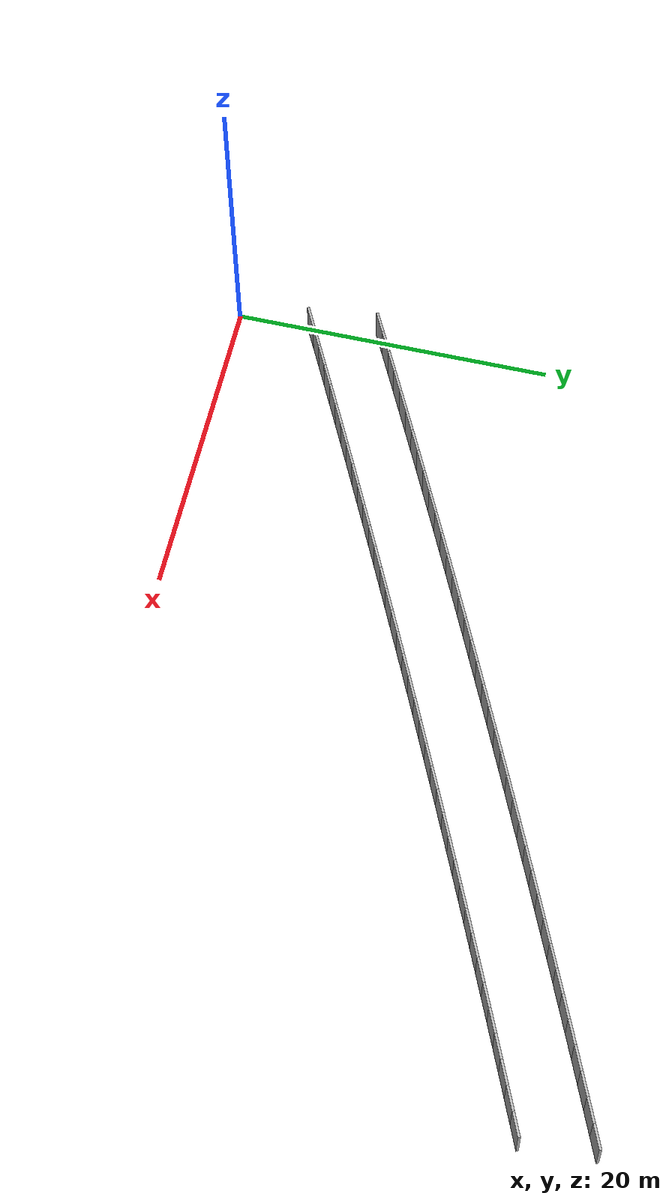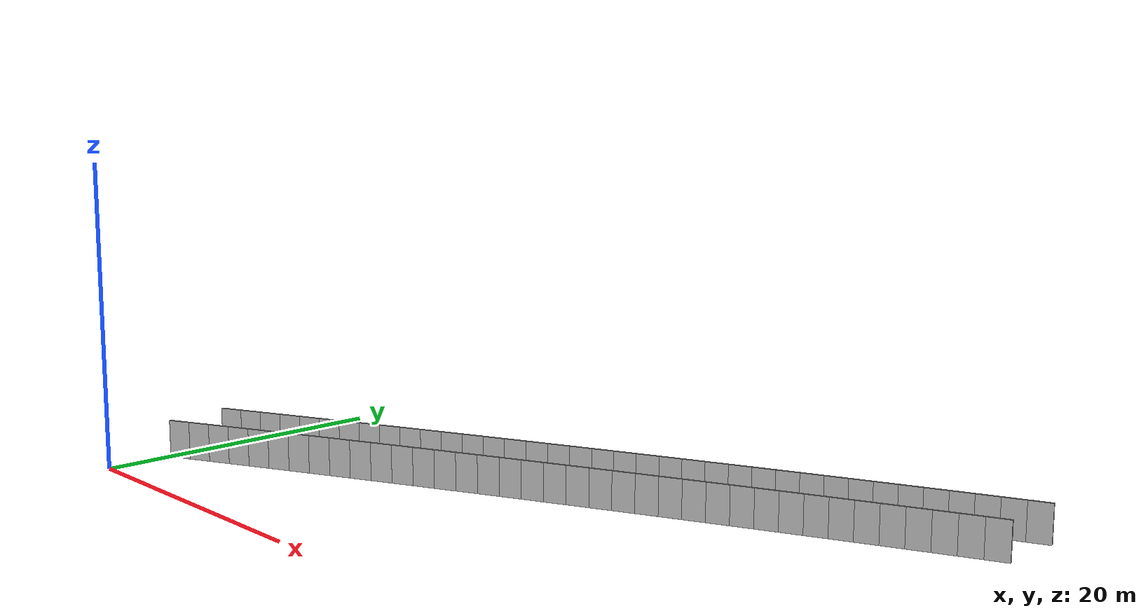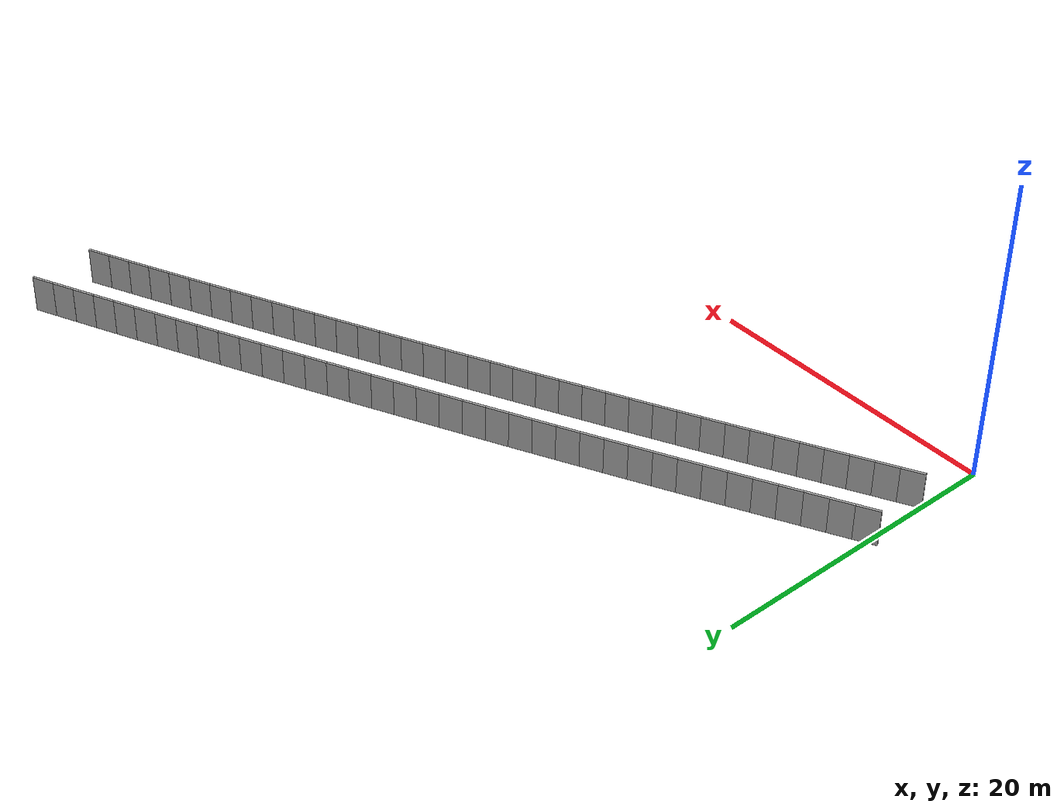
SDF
<?xml version="1.0" ?>
<sdf version="1.6">
  <model name="sps_1545">
    <pose frame="">0 0 0 0 -0 0</pose>
    <static>1</static>
    <self_collide>0</self_collide>
    <allow_auto_disable>0</allow_auto_disable>
    <link name="Wall3127">
      <kinematic>0</kinematic>
      <gravity>1</gravity>
      <self_collide>0</self_collide>
      <collision name="collision">
        <geometry>
          <box>
            <size>1.4966 0.15 2.5</size>
          </box>
        </geometry>
        <pose frame="">0 0 0 0 -0 0</pose>
      </collision>
      <visual name="visual">
        <geometry>
          <box>
            <size>1.4966 0.15 2.5</size>
          </box>
        </geometry>
        <pose frame="">0 0 0 0 -0 0</pose>
        <cast_shadows>1</cast_shadows>
        <transparency>0.0</transparency>
      </visual>
      <pose frame="">49.2956 28.1394 1.25 0 0 -2.72398</pose>
    </link>
    <link name="Wall3128">
      <kinematic>0</kinematic>
      <gravity>1</gravity>
      <self_collide>0</self_collide>
      <collision name="collision">
        <geometry>
          <box>
            <size>1.49636 0.15 2.5</size>
          </box>
        </geometry>
        <pose frame="">0 0 0 0 -0 0</pose>
      </collision>
      <visual name="visual">
        <geometry>
          <box>
            <size>1.49636 0.15 2.5</size>
          </box>
        </geometry>
        <pose frame="">0 0 0 0 -0 0</pose>
        <cast_shadows>1</cast_shadows>
        <transparency>0.0</transparency>
      </visual>
      <pose frame="">47.9282 27.5314 1.25 0 0 -2.72243</pose>
    </link>
    <link name="Wall3129">
      <kinematic>0</kinematic>
      <gravity>1</gravity>
      <self_collide>0</self_collide>
      <collision name="collision">
        <geometry>
          <box>
            <size>1.49648 0.15 2.5</size>
          </box>
        </geometry>
        <pose frame="">0 0 0 0 -0 0</pose>
      </collision>
      <visual name="visual">
        <geometry>
          <box>
            <size>1.49648 0.15 2.5</size>
          </box>
        </geometry>
        <pose frame="">0 0 0 0 -0 0</pose>
        <cast_shadows>1</cast_shadows>
        <transparency>0.0</transparency>
      </visual>
      <pose frame="">46.5619 26.9213 1.25 0 0 -2.72086</pose>
    </link>
    <link name="Wall3130">
      <kinematic>0</kinematic>
      <gravity>1</gravity>
      <self_collide>0</self_collide>
      <collision name="collision">
        <geometry>
          <box>
            <size>1.49656 0.15 2.5</size>
          </box>
        </geometry>
        <pose frame="">0 0 0 0 -0 0</pose>
      </collision>
      <visual name="visual">
        <geometry>
          <box>
            <size>1.49656 0.15 2.5</size>
          </box>
        </geometry>
        <pose frame="">0 0 0 0 -0 0</pose>
        <cast_shadows>1</cast_shadows>
        <transparency>0.0</transparency>
      </visual>
      <pose frame="">45.1964 26.3089 1.25 0 0 -2.71914</pose>
    </link>
    <link name="Wall3131">
      <kinematic>0</kinematic>
      <gravity>1</gravity>
      <self_collide>0</self_collide>
      <collision name="collision">
        <geometry>
          <box>
            <size>1.4965 0.15 2.5</size>
          </box>
        </geometry>
        <pose frame="">0 0 0 0 -0 0</pose>
      </collision>
      <visual name="visual">
        <geometry>
          <box>
            <size>1.4965 0.15 2.5</size>
          </box>
        </geometry>
        <pose frame="">0 0 0 0 -0 0</pose>
        <cast_shadows>1</cast_shadows>
        <transparency>0.0</transparency>
      </visual>
      <pose frame="">43.8319 25.6943 1.25 0 0 -2.71765</pose>
    </link>
    <link name="Wall3132">
      <kinematic>0</kinematic>
      <gravity>1</gravity>
      <self_collide>0</self_collide>
      <collision name="collision">
        <geometry>
          <box>
            <size>1.4966 0.15 2.5</size>
          </box>
        </geometry>
        <pose frame="">0 0 0 0 -0 0</pose>
      </collision>
      <visual name="visual">
        <geometry>
          <box>
            <size>1.4966 0.15 2.5</size>
          </box>
        </geometry>
        <pose frame="">0 0 0 0 -0 0</pose>
        <cast_shadows>1</cast_shadows>
        <transparency>0.0</transparency>
      </visual>
      <pose frame="">42.4683 25.0777 1.25 0 0 -2.7162</pose>
    </link>
    <link name="Wall3133">
      <kinematic>0</kinematic>
      <gravity>1</gravity>
      <self_collide>0</self_collide>
      <collision name="collision">
        <geometry>
          <box>
            <size>1.49647 0.15 2.5</size>
          </box>
        </geometry>
        <pose frame="">0 0 0 0 -0 0</pose>
      </collision>
      <visual name="visual">
        <geometry>
          <box>
            <size>1.49647 0.15 2.5</size>
          </box>
        </geometry>
        <pose frame="">0 0 0 0 -0 0</pose>
        <cast_shadows>1</cast_shadows>
        <transparency>0.0</transparency>
      </visual>
      <pose frame="">41.1056 24.4589 1.25 0 0 -2.71441</pose>
    </link>
    <link name="Wall3134">
      <kinematic>0</kinematic>
      <gravity>1</gravity>
      <self_collide>0</self_collide>
      <collision name="collision">
        <geometry>
          <box>
            <size>1.49659 0.15 2.5</size>
          </box>
        </geometry>
        <pose frame="">0 0 0 0 -0 0</pose>
      </collision>
      <visual name="visual">
        <geometry>
          <box>
            <size>1.49659 0.15 2.5</size>
          </box>
        </geometry>
        <pose frame="">0 0 0 0 -0 0</pose>
        <cast_shadows>1</cast_shadows>
        <transparency>0.0</transparency>
      </visual>
      <pose frame="">39.744 23.8379 1.25 0 0 -2.71297</pose>
    </link>
    <link name="Wall3135">
      <kinematic>0</kinematic>
      <gravity>1</gravity>
      <self_collide>0</self_collide>
      <collision name="collision">
        <geometry>
          <box>
            <size>1.49629 0.15 2.5</size>
          </box>
        </geometry>
        <pose frame="">0 0 0 0 -0 0</pose>
      </collision>
      <visual name="visual">
        <geometry>
          <box>
            <size>1.49629 0.15 2.5</size>
          </box>
        </geometry>
        <pose frame="">0 0 0 0 -0 0</pose>
        <cast_shadows>1</cast_shadows>
        <transparency>0.0</transparency>
      </visual>
      <pose frame="">38.3834 23.2149 1.25 0 0 -2.71144</pose>
    </link>
    <link name="Wall3136">
      <kinematic>0</kinematic>
      <gravity>1</gravity>
      <self_collide>0</self_collide>
      <collision name="collision">
        <geometry>
          <box>
            <size>1.49642 0.15 2.5</size>
          </box>
        </geometry>
        <pose frame="">0 0 0 0 -0 0</pose>
      </collision>
      <visual name="visual">
        <geometry>
          <box>
            <size>1.49642 0.15 2.5</size>
          </box>
        </geometry>
        <pose frame="">0 0 0 0 -0 0</pose>
        <cast_shadows>1</cast_shadows>
        <transparency>0.0</transparency>
      </visual>
      <pose frame="">37.0239 22.5897 1.25 0 0 -2.70969</pose>
    </link>
    <link name="Wall3137">
      <kinematic>0</kinematic>
      <gravity>1</gravity>
      <self_collide>0</self_collide>
      <collision name="collision">
        <geometry>
          <box>
            <size>1.49663 0.15 2.5</size>
          </box>
        </geometry>
        <pose frame="">0 0 0 0 -0 0</pose>
      </collision>
      <visual name="visual">
        <geometry>
          <box>
            <size>1.49663 0.15 2.5</size>
          </box>
        </geometry>
        <pose frame="">0 0 0 0 -0 0</pose>
        <cast_shadows>1</cast_shadows>
        <transparency>0.0</transparency>
      </visual>
      <pose frame="">35.6653 21.9622 1.25 0 0 -2.70813</pose>
    </link>
    <link name="Wall3138">
      <kinematic>0</kinematic>
      <gravity>1</gravity>
      <self_collide>0</self_collide>
      <collision name="collision">
        <geometry>
          <box>
            <size>1.49637 0.15 2.5</size>
          </box>
        </geometry>
        <pose frame="">0 0 0 0 -0 0</pose>
      </collision>
      <visual name="visual">
        <geometry>
          <box>
            <size>1.49637 0.15 2.5</size>
          </box>
        </geometry>
        <pose frame="">0 0 0 0 -0 0</pose>
        <cast_shadows>1</cast_shadows>
        <transparency>0.0</transparency>
      </visual>
      <pose frame="">34.3077 21.3326 1.25 0 0 -2.70657</pose>
    </link>
    <link name="Wall3139">
      <kinematic>0</kinematic>
      <gravity>1</gravity>
      <self_collide>0</self_collide>
      <collision name="collision">
        <geometry>
          <box>
            <size>1.49665 0.15 2.5</size>
          </box>
        </geometry>
        <pose frame="">0 0 0 0 -0 0</pose>
      </collision>
      <visual name="visual">
        <geometry>
          <box>
            <size>1.49665 0.15 2.5</size>
          </box>
        </geometry>
        <pose frame="">0 0 0 0 -0 0</pose>
        <cast_shadows>1</cast_shadows>
        <transparency>0.0</transparency>
      </visual>
      <pose frame="">32.9511 20.7008 1.25 0 0 -2.7049</pose>
    </link>
    <link name="Wall3140">
      <kinematic>0</kinematic>
      <gravity>1</gravity>
      <self_collide>0</self_collide>
      <collision name="collision">
        <geometry>
          <box>
            <size>1.4964 0.15 2.5</size>
          </box>
        </geometry>
        <pose frame="">0 0 0 0 -0 0</pose>
      </collision>
      <visual name="visual">
        <geometry>
          <box>
            <size>1.4964 0.15 2.5</size>
          </box>
        </geometry>
        <pose frame="">0 0 0 0 -0 0</pose>
        <cast_shadows>1</cast_shadows>
        <transparency>0.0</transparency>
      </visual>
      <pose frame="">31.5955 20.0668 1.25 0 0 -2.70334</pose>
    </link>
    <link name="Wall3141">
      <kinematic>0</kinematic>
      <gravity>1</gravity>
      <self_collide>0</self_collide>
      <collision name="collision">
        <geometry>
          <box>
            <size>1.49661 0.15 2.5</size>
          </box>
        </geometry>
        <pose frame="">0 0 0 0 -0 0</pose>
      </collision>
      <visual name="visual">
        <geometry>
          <box>
            <size>1.49661 0.15 2.5</size>
          </box>
        </geometry>
        <pose frame="">0 0 0 0 -0 0</pose>
        <cast_shadows>1</cast_shadows>
        <transparency>0.0</transparency>
      </visual>
      <pose frame="">30.241 19.4307 1.25 0 0 -2.70178</pose>
    </link>
    <link name="Wall3142">
      <kinematic>0</kinematic>
      <gravity>1</gravity>
      <self_collide>0</self_collide>
      <collision name="collision">
        <geometry>
          <box>
            <size>1.4964 0.15 2.5</size>
          </box>
        </geometry>
        <pose frame="">0 0 0 0 -0 0</pose>
      </collision>
      <visual name="visual">
        <geometry>
          <box>
            <size>1.4964 0.15 2.5</size>
          </box>
        </geometry>
        <pose frame="">0 0 0 0 -0 0</pose>
        <cast_shadows>1</cast_shadows>
        <transparency>0.0</transparency>
      </visual>
      <pose frame="">28.8874 18.7925 1.25 0 0 -2.70027</pose>
    </link>
    <link name="Wall3143">
      <kinematic>0</kinematic>
      <gravity>1</gravity>
      <self_collide>0</self_collide>
      <collision name="collision">
        <geometry>
          <box>
            <size>1.49635 0.15 2.5</size>
          </box>
        </geometry>
        <pose frame="">0 0 0 0 -0 0</pose>
      </collision>
      <visual name="visual">
        <geometry>
          <box>
            <size>1.49635 0.15 2.5</size>
          </box>
        </geometry>
        <pose frame="">0 0 0 0 -0 0</pose>
        <cast_shadows>1</cast_shadows>
        <transparency>0.0</transparency>
      </visual>
      <pose frame="">27.5348 18.1523 1.25 0 0 -2.69872</pose>
    </link>
    <link name="Wall3144">
      <kinematic>0</kinematic>
      <gravity>1</gravity>
      <self_collide>0</self_collide>
      <collision name="collision">
        <geometry>
          <box>
            <size>1.49665 0.15 2.5</size>
          </box>
        </geometry>
        <pose frame="">0 0 0 0 -0 0</pose>
      </collision>
      <visual name="visual">
        <geometry>
          <box>
            <size>1.49665 0.15 2.5</size>
          </box>
        </geometry>
        <pose frame="">0 0 0 0 -0 0</pose>
        <cast_shadows>1</cast_shadows>
        <transparency>0.0</transparency>
      </visual>
      <pose frame="">26.1832 17.5099 1.25 0 0 -2.69706</pose>
    </link>
    <link name="Wall3145">
      <kinematic>0</kinematic>
      <gravity>1</gravity>
      <self_collide>0</self_collide>
      <collision name="collision">
        <geometry>
          <box>
            <size>1.49639 0.15 2.5</size>
          </box>
        </geometry>
        <pose frame="">0 0 0 0 -0 0</pose>
      </collision>
      <visual name="visual">
        <geometry>
          <box>
            <size>1.49639 0.15 2.5</size>
          </box>
        </geometry>
        <pose frame="">0 0 0 0 -0 0</pose>
        <cast_shadows>1</cast_shadows>
        <transparency>0.0</transparency>
      </visual>
      <pose frame="">24.8327 16.8653 1.25 0 0 -2.69553</pose>
    </link>
    <link name="Wall3146">
      <kinematic>0</kinematic>
      <gravity>1</gravity>
      <self_collide>0</self_collide>
      <collision name="collision">
        <geometry>
          <box>
            <size>1.49649 0.15 2.5</size>
          </box>
        </geometry>
        <pose frame="">0 0 0 0 -0 0</pose>
      </collision>
      <visual name="visual">
        <geometry>
          <box>
            <size>1.49649 0.15 2.5</size>
          </box>
        </geometry>
        <pose frame="">0 0 0 0 -0 0</pose>
        <cast_shadows>1</cast_shadows>
        <transparency>0.0</transparency>
      </visual>
      <pose frame="">23.4832 16.2186 1.25 0 0 -2.69389</pose>
    </link>
    <link name="Wall3147">
      <kinematic>0</kinematic>
      <gravity>1</gravity>
      <self_collide>0</self_collide>
      <collision name="collision">
        <geometry>
          <box>
            <size>1.49653 0.15 2.5</size>
          </box>
        </geometry>
        <pose frame="">0 0 0 0 -0 0</pose>
      </collision>
      <visual name="visual">
        <geometry>
          <box>
            <size>1.49653 0.15 2.5</size>
          </box>
        </geometry>
        <pose frame="">0 0 0 0 -0 0</pose>
        <cast_shadows>1</cast_shadows>
        <transparency>0.0</transparency>
      </visual>
      <pose frame="">22.1347 15.5697 1.25 0 0 -2.69232</pose>
    </link>
    <link name="Wall3148">
      <kinematic>0</kinematic>
      <gravity>1</gravity>
      <self_collide>0</self_collide>
      <collision name="collision">
        <geometry>
          <box>
            <size>1.49658 0.15 2.5</size>
          </box>
        </geometry>
        <pose frame="">0 0 0 0 -0 0</pose>
      </collision>
      <visual name="visual">
        <geometry>
          <box>
            <size>1.49658 0.15 2.5</size>
          </box>
        </geometry>
        <pose frame="">0 0 0 0 -0 0</pose>
        <cast_shadows>1</cast_shadows>
        <transparency>0.0</transparency>
      </visual>
      <pose frame="">20.7872 14.9186 1.25 0 0 -2.69066</pose>
    </link>
    <link name="Wall3149">
      <kinematic>0</kinematic>
      <gravity>1</gravity>
      <self_collide>0</self_collide>
      <collision name="collision">
        <geometry>
          <box>
            <size>1.49666 0.15 2.5</size>
          </box>
        </geometry>
        <pose frame="">0 0 0 0 -0 0</pose>
      </collision>
      <visual name="visual">
        <geometry>
          <box>
            <size>1.49666 0.15 2.5</size>
          </box>
        </geometry>
        <pose frame="">0 0 0 0 -0 0</pose>
        <cast_shadows>1</cast_shadows>
        <transparency>0.0</transparency>
      </visual>
      <pose frame="">19.4407 14.2653 1.25 0 0 -2.68905</pose>
    </link>
    <link name="Wall3150">
      <kinematic>0</kinematic>
      <gravity>1</gravity>
      <self_collide>0</self_collide>
      <collision name="collision">
        <geometry>
          <box>
            <size>1.49634 0.15 2.5</size>
          </box>
        </geometry>
        <pose frame="">0 0 0 0 -0 0</pose>
      </collision>
      <visual name="visual">
        <geometry>
          <box>
            <size>1.49634 0.15 2.5</size>
          </box>
        </geometry>
        <pose frame="">0 0 0 0 -0 0</pose>
        <cast_shadows>1</cast_shadows>
        <transparency>0.0</transparency>
      </visual>
      <pose frame="">18.0953 13.61 1.25 0 0 -2.68763</pose>
    </link>
    <link name="Wall3151">
      <kinematic>0</kinematic>
      <gravity>1</gravity>
      <self_collide>0</self_collide>
      <collision name="collision">
        <geometry>
          <box>
            <size>1.49651 0.15 2.5</size>
          </box>
        </geometry>
        <pose frame="">0 0 0 0 -0 0</pose>
      </collision>
      <visual name="visual">
        <geometry>
          <box>
            <size>1.49651 0.15 2.5</size>
          </box>
        </geometry>
        <pose frame="">0 0 0 0 -0 0</pose>
        <cast_shadows>1</cast_shadows>
        <transparency>0.0</transparency>
      </visual>
      <pose frame="">16.751 12.9526 1.25 0 0 -2.68592</pose>
    </link>
    <link name="Wall3152">
      <kinematic>0</kinematic>
      <gravity>1</gravity>
      <self_collide>0</self_collide>
      <collision name="collision">
        <geometry>
          <box>
            <size>1.49622 0.15 2.5</size>
          </box>
        </geometry>
        <pose frame="">0 0 0 0 -0 0</pose>
      </collision>
      <visual name="visual">
        <geometry>
          <box>
            <size>1.49622 0.15 2.5</size>
          </box>
        </geometry>
        <pose frame="">0 0 0 0 -0 0</pose>
        <cast_shadows>1</cast_shadows>
        <transparency>0.0</transparency>
      </visual>
      <pose frame="">15.4078 12.2931 1.25 0 0 -2.68446</pose>
    </link>
    <link name="Wall3153">
      <kinematic>0</kinematic>
      <gravity>1</gravity>
      <self_collide>0</self_collide>
      <collision name="collision">
        <geometry>
          <box>
            <size>1.49659 0.15 2.5</size>
          </box>
        </geometry>
        <pose frame="">0 0 0 0 -0 0</pose>
      </collision>
      <visual name="visual">
        <geometry>
          <box>
            <size>1.49659 0.15 2.5</size>
          </box>
        </geometry>
        <pose frame="">0 0 0 0 -0 0</pose>
        <cast_shadows>1</cast_shadows>
        <transparency>0.0</transparency>
      </visual>
      <pose frame="">14.0656 11.6315 1.25 0 0 -2.68276</pose>
    </link>
    <link name="Wall3154">
      <kinematic>0</kinematic>
      <gravity>1</gravity>
      <self_collide>0</self_collide>
      <collision name="collision">
        <geometry>
          <box>
            <size>1.49658 0.15 2.5</size>
          </box>
        </geometry>
        <pose frame="">0 0 0 0 -0 0</pose>
      </collision>
      <visual name="visual">
        <geometry>
          <box>
            <size>1.49658 0.15 2.5</size>
          </box>
        </geometry>
        <pose frame="">0 0 0 0 -0 0</pose>
        <cast_shadows>1</cast_shadows>
        <transparency>0.0</transparency>
      </visual>
      <pose frame="">12.7243 10.9677 1.25 0 0 -2.6813</pose>
    </link>
    <link name="Wall3155">
      <kinematic>0</kinematic>
      <gravity>1</gravity>
      <self_collide>0</self_collide>
      <collision name="collision">
        <geometry>
          <box>
            <size>1.49663 0.15 2.5</size>
          </box>
        </geometry>
        <pose frame="">0 0 0 0 -0 0</pose>
      </collision>
      <visual name="visual">
        <geometry>
          <box>
            <size>1.49663 0.15 2.5</size>
          </box>
        </geometry>
        <pose frame="">0 0 0 0 -0 0</pose>
        <cast_shadows>1</cast_shadows>
        <transparency>0.0</transparency>
      </visual>
      <pose frame="">11.384 10.3018 1.25 0 0 -2.67968</pose>
    </link>
    <link name="Wall3156">
      <kinematic>0</kinematic>
      <gravity>1</gravity>
      <self_collide>0</self_collide>
      <collision name="collision">
        <geometry>
          <box>
            <size>1.49641 0.15 2.5</size>
          </box>
        </geometry>
        <pose frame="">0 0 0 0 -0 0</pose>
      </collision>
      <visual name="visual">
        <geometry>
          <box>
            <size>1.49641 0.15 2.5</size>
          </box>
        </geometry>
        <pose frame="">0 0 0 0 -0 0</pose>
        <cast_shadows>1</cast_shadows>
        <transparency>0.0</transparency>
      </visual>
      <pose frame="">10.0449 9.63368 1.25 0 0 -2.67796</pose>
    </link>
    <link name="Wall3157">
      <kinematic>0</kinematic>
      <gravity>1</gravity>
      <self_collide>0</self_collide>
      <collision name="collision">
        <geometry>
          <box>
            <size>1.49655 0.15 2.5</size>
          </box>
        </geometry>
        <pose frame="">0 0 0 0 -0 0</pose>
      </collision>
      <visual name="visual">
        <geometry>
          <box>
            <size>1.49655 0.15 2.5</size>
          </box>
        </geometry>
        <pose frame="">0 0 0 0 -0 0</pose>
        <cast_shadows>1</cast_shadows>
        <transparency>0.0</transparency>
      </visual>
      <pose frame="">8.70684 8.96348 1.25 0 0 -2.6765</pose>
    </link>
    <link name="Wall3158">
      <kinematic>0</kinematic>
      <gravity>1</gravity>
      <self_collide>0</self_collide>
      <collision name="collision">
        <geometry>
          <box>
            <size>1.49644 0.15 2.5</size>
          </box>
        </geometry>
        <pose frame="">0 0 0 0 -0 0</pose>
      </collision>
      <visual name="visual">
        <geometry>
          <box>
            <size>1.49644 0.15 2.5</size>
          </box>
        </geometry>
        <pose frame="">0 0 0 0 -0 0</pose>
        <cast_shadows>1</cast_shadows>
        <transparency>0.0</transparency>
      </visual>
      <pose frame="">7.36986 8.29118 1.25 0 0 -2.67483</pose>
    </link>
    <link name="Wall3159">
      <kinematic>0</kinematic>
      <gravity>1</gravity>
      <self_collide>0</self_collide>
      <collision name="collision">
        <geometry>
          <box>
            <size>1.49653 0.15 2.5</size>
          </box>
        </geometry>
        <pose frame="">0 0 0 0 -0 0</pose>
      </collision>
      <visual name="visual">
        <geometry>
          <box>
            <size>1.49653 0.15 2.5</size>
          </box>
        </geometry>
        <pose frame="">0 0 0 0 -0 0</pose>
        <cast_shadows>1</cast_shadows>
        <transparency>0.0</transparency>
      </visual>
      <pose frame="">6.03396 7.61677 1.25 0 0 -2.67335</pose>
    </link>
    <link name="Wall3160">
      <kinematic>0</kinematic>
      <gravity>1</gravity>
      <self_collide>0</self_collide>
      <collision name="collision">
        <geometry>
          <box>
            <size>1.49652 0.15 2.5</size>
          </box>
        </geometry>
        <pose frame="">0 0 0 0 -0 0</pose>
      </collision>
      <visual name="visual">
        <geometry>
          <box>
            <size>1.49652 0.15 2.5</size>
          </box>
        </geometry>
        <pose frame="">0 0 0 0 -0 0</pose>
        <cast_shadows>1</cast_shadows>
        <transparency>0.0</transparency>
      </visual>
      <pose frame="">4.69906 6.94029 1.25 0 0 -2.67174</pose>
    </link>
    <link name="Wall3161">
      <kinematic>0</kinematic>
      <gravity>1</gravity>
      <self_collide>0</self_collide>
      <collision name="collision">
        <geometry>
          <box>
            <size>1.49656 0.15 2.5</size>
          </box>
        </geometry>
        <pose frame="">0 0 0 0 -0 0</pose>
      </collision>
      <visual name="visual">
        <geometry>
          <box>
            <size>1.49656 0.15 2.5</size>
          </box>
        </geometry>
        <pose frame="">0 0 0 0 -0 0</pose>
        <cast_shadows>1</cast_shadows>
        <transparency>0.0</transparency>
      </visual>
      <pose frame="">3.36526 6.26161 1.25 0 0 -2.67007</pose>
    </link>
    <link name="Wall3162">
      <kinematic>0</kinematic>
      <gravity>1</gravity>
      <self_collide>0</self_collide>
      <collision name="collision">
        <geometry>
          <box>
            <size>1.4965 0.15 2.5</size>
          </box>
        </geometry>
        <pose frame="">0 0 0 0 -0 0</pose>
      </collision>
      <visual name="visual">
        <geometry>
          <box>
            <size>1.4965 0.15 2.5</size>
          </box>
        </geometry>
        <pose frame="">0 0 0 0 -0 0</pose>
        <cast_shadows>1</cast_shadows>
        <transparency>0.0</transparency>
      </visual>
      <pose frame="">2.03255 5.58079 1.25 0 0 -2.66853</pose>
    </link>
    <link name="Wall3163">
      <kinematic>0</kinematic>
      <gravity>1</gravity>
      <self_collide>0</self_collide>
      <collision name="collision">
        <geometry>
          <box>
            <size>1.49644 0.15 2.5</size>
          </box>
        </geometry>
        <pose frame="">0 0 0 0 -0 0</pose>
      </collision>
      <visual name="visual">
        <geometry>
          <box>
            <size>1.49644 0.15 2.5</size>
          </box>
        </geometry>
        <pose frame="">0 0 0 0 -0 0</pose>
        <cast_shadows>1</cast_shadows>
        <transparency>0.0</transparency>
      </visual>
      <pose frame="">0.70098 4.8979 1.25 0 0 -2.66691</pose>
    </link>
    <link name="Wall5737">
      <kinematic>0</kinematic>
      <gravity>1</gravity>
      <self_collide>0</self_collide>
      <collision name="collision">
        <geometry>
          <box>
            <size>1.50302 0.15 2.5</size>
          </box>
        </geometry>
        <pose frame="">0 0 0 0 -0 0</pose>
      </collision>
      <visual name="visual">
        <geometry>
          <box>
            <size>1.50302 0.15 2.5</size>
          </box>
        </geometry>
        <pose frame="">0 0 0 0 -0 0</pose>
        <cast_shadows>1</cast_shadows>
        <transparency>0.0</transparency>
      </visual>
      <pose frame="">48.9828 32.5284 1.25 0 0 -2.72556</pose>
    </link>
    <link name="Wall5738">
      <kinematic>0</kinematic>
      <gravity>1</gravity>
      <self_collide>0</self_collide>
      <collision name="collision">
        <geometry>
          <box>
            <size>1.50313 0.15 2.5</size>
          </box>
        </geometry>
        <pose frame="">0 0 0 0 -0 0</pose>
      </collision>
      <visual name="visual">
        <geometry>
          <box>
            <size>1.50313 0.15 2.5</size>
          </box>
        </geometry>
        <pose frame="">0 0 0 0 -0 0</pose>
        <cast_shadows>1</cast_shadows>
        <transparency>0.0</transparency>
      </visual>
      <pose frame="">47.6085 31.9199 1.25 0 0 -2.72399</pose>
    </link>
    <link name="Wall5739">
      <kinematic>0</kinematic>
      <gravity>1</gravity>
      <self_collide>0</self_collide>
      <collision name="collision">
        <geometry>
          <box>
            <size>1.50311 0.15 2.5</size>
          </box>
        </geometry>
        <pose frame="">0 0 0 0 -0 0</pose>
      </collision>
      <visual name="visual">
        <geometry>
          <box>
            <size>1.50311 0.15 2.5</size>
          </box>
        </geometry>
        <pose frame="">0 0 0 0 -0 0</pose>
        <cast_shadows>1</cast_shadows>
        <transparency>0.0</transparency>
      </visual>
      <pose frame="">46.235 31.3092 1.25 0 0 -2.72243</pose>
    </link>
    <link name="Wall5740">
      <kinematic>0</kinematic>
      <gravity>1</gravity>
      <self_collide>0</self_collide>
      <collision name="collision">
        <geometry>
          <box>
            <size>1.50314 0.15 2.5</size>
          </box>
        </geometry>
        <pose frame="">0 0 0 0 -0 0</pose>
      </collision>
      <visual name="visual">
        <geometry>
          <box>
            <size>1.50314 0.15 2.5</size>
          </box>
        </geometry>
        <pose frame="">0 0 0 0 -0 0</pose>
        <cast_shadows>1</cast_shadows>
        <transparency>0.0</transparency>
      </visual>
      <pose frame="">44.8625 30.6963 1.25 0 0 -2.7208</pose>
    </link>
    <link name="Wall5741">
      <kinematic>0</kinematic>
      <gravity>1</gravity>
      <self_collide>0</self_collide>
      <collision name="collision">
        <geometry>
          <box>
            <size>1.50315 0.15 2.5</size>
          </box>
        </geometry>
        <pose frame="">0 0 0 0 -0 0</pose>
      </collision>
      <visual name="visual">
        <geometry>
          <box>
            <size>1.50315 0.15 2.5</size>
          </box>
        </geometry>
        <pose frame="">0 0 0 0 -0 0</pose>
        <cast_shadows>1</cast_shadows>
        <transparency>0.0</transparency>
      </visual>
      <pose frame="">43.491 30.0812 1.25 0 0 -2.7192</pose>
    </link>
    <link name="Wall5742">
      <kinematic>0</kinematic>
      <gravity>1</gravity>
      <self_collide>0</self_collide>
      <collision name="collision">
        <geometry>
          <box>
            <size>1.5031 0.15 2.5</size>
          </box>
        </geometry>
        <pose frame="">0 0 0 0 -0 0</pose>
      </collision>
      <visual name="visual">
        <geometry>
          <box>
            <size>1.5031 0.15 2.5</size>
          </box>
        </geometry>
        <pose frame="">0 0 0 0 -0 0</pose>
        <cast_shadows>1</cast_shadows>
        <transparency>0.0</transparency>
      </visual>
      <pose frame="">42.1204 29.4639 1.25 0 0 -2.71758</pose>
    </link>
    <link name="Wall5743">
      <kinematic>0</kinematic>
      <gravity>1</gravity>
      <self_collide>0</self_collide>
      <collision name="collision">
        <geometry>
          <box>
            <size>1.50302 0.15 2.5</size>
          </box>
        </geometry>
        <pose frame="">0 0 0 0 -0 0</pose>
      </collision>
      <visual name="visual">
        <geometry>
          <box>
            <size>1.50302 0.15 2.5</size>
          </box>
        </geometry>
        <pose frame="">0 0 0 0 -0 0</pose>
        <cast_shadows>1</cast_shadows>
        <transparency>0.0</transparency>
      </visual>
      <pose frame="">40.7509 28.8445 1.25 0 0 -2.71613</pose>
    </link>
    <link name="Wall5744">
      <kinematic>0</kinematic>
      <gravity>1</gravity>
      <self_collide>0</self_collide>
      <collision name="collision">
        <geometry>
          <box>
            <size>1.50301 0.15 2.5</size>
          </box>
        </geometry>
        <pose frame="">0 0 0 0 -0 0</pose>
      </collision>
      <visual name="visual">
        <geometry>
          <box>
            <size>1.50301 0.15 2.5</size>
          </box>
        </geometry>
        <pose frame="">0 0 0 0 -0 0</pose>
        <cast_shadows>1</cast_shadows>
        <transparency>0.0</transparency>
      </visual>
      <pose frame="">39.3824 28.223 1.25 0 0 -2.71447</pose>
    </link>
    <link name="Wall5745">
      <kinematic>0</kinematic>
      <gravity>1</gravity>
      <self_collide>0</self_collide>
      <collision name="collision">
        <geometry>
          <box>
            <size>1.50295 0.15 2.5</size>
          </box>
        </geometry>
        <pose frame="">0 0 0 0 -0 0</pose>
      </collision>
      <visual name="visual">
        <geometry>
          <box>
            <size>1.50295 0.15 2.5</size>
          </box>
        </geometry>
        <pose frame="">0 0 0 0 -0 0</pose>
        <cast_shadows>1</cast_shadows>
        <transparency>0.0</transparency>
      </visual>
      <pose frame="">38.0149 27.5994 1.25 0 0 -2.71299</pose>
    </link>
    <link name="Wall5746">
      <kinematic>0</kinematic>
      <gravity>1</gravity>
      <self_collide>0</self_collide>
      <collision name="collision">
        <geometry>
          <box>
            <size>1.5032 0.15 2.5</size>
          </box>
        </geometry>
        <pose frame="">0 0 0 0 -0 0</pose>
      </collision>
      <visual name="visual">
        <geometry>
          <box>
            <size>1.5032 0.15 2.5</size>
          </box>
        </geometry>
        <pose frame="">0 0 0 0 -0 0</pose>
        <cast_shadows>1</cast_shadows>
        <transparency>0.0</transparency>
      </visual>
      <pose frame="">36.6483 26.9736 1.25 0 0 -2.71136</pose>
    </link>
    <link name="Wall5747">
      <kinematic>0</kinematic>
      <gravity>1</gravity>
      <self_collide>0</self_collide>
      <collision name="collision">
        <geometry>
          <box>
            <size>1.50303 0.15 2.5</size>
          </box>
        </geometry>
        <pose frame="">0 0 0 0 -0 0</pose>
      </collision>
      <visual name="visual">
        <geometry>
          <box>
            <size>1.50303 0.15 2.5</size>
          </box>
        </geometry>
        <pose frame="">0 0 0 0 -0 0</pose>
        <cast_shadows>1</cast_shadows>
        <transparency>0.0</transparency>
      </visual>
      <pose frame="">35.2827 26.3455 1.25 0 0 -2.70966</pose>
    </link>
    <link name="Wall5748">
      <kinematic>0</kinematic>
      <gravity>1</gravity>
      <self_collide>0</self_collide>
      <collision name="collision">
        <geometry>
          <box>
            <size>1.50299 0.15 2.5</size>
          </box>
        </geometry>
        <pose frame="">0 0 0 0 -0 0</pose>
      </collision>
      <visual name="visual">
        <geometry>
          <box>
            <size>1.50299 0.15 2.5</size>
          </box>
        </geometry>
        <pose frame="">0 0 0 0 -0 0</pose>
        <cast_shadows>1</cast_shadows>
        <transparency>0.0</transparency>
      </visual>
      <pose frame="">33.9182 25.7153 1.25 0 0 -2.70817</pose>
    </link>
    <link name="Wall5749">
      <kinematic>0</kinematic>
      <gravity>1</gravity>
      <self_collide>0</self_collide>
      <collision name="collision">
        <geometry>
          <box>
            <size>1.50322 0.15 2.5</size>
          </box>
        </geometry>
        <pose frame="">0 0 0 0 -0 0</pose>
      </collision>
      <visual name="visual">
        <geometry>
          <box>
            <size>1.50322 0.15 2.5</size>
          </box>
        </geometry>
        <pose frame="">0 0 0 0 -0 0</pose>
        <cast_shadows>1</cast_shadows>
        <transparency>0.0</transparency>
      </visual>
      <pose frame="">32.5546 25.0829 1.25 0 0 -2.70649</pose>
    </link>
    <link name="Wall5750">
      <kinematic>0</kinematic>
      <gravity>1</gravity>
      <self_collide>0</self_collide>
      <collision name="collision">
        <geometry>
          <box>
            <size>1.50299 0.15 2.5</size>
          </box>
        </geometry>
        <pose frame="">0 0 0 0 -0 0</pose>
      </collision>
      <visual name="visual">
        <geometry>
          <box>
            <size>1.50299 0.15 2.5</size>
          </box>
        </geometry>
        <pose frame="">0 0 0 0 -0 0</pose>
        <cast_shadows>1</cast_shadows>
        <transparency>0.0</transparency>
      </visual>
      <pose frame="">31.1921 24.4483 1.25 0 0 -2.70499</pose>
    </link>
    <link name="Wall5751">
      <kinematic>0</kinematic>
      <gravity>1</gravity>
      <self_collide>0</self_collide>
      <collision name="collision">
        <geometry>
          <box>
            <size>1.50323 0.15 2.5</size>
          </box>
        </geometry>
        <pose frame="">0 0 0 0 -0 0</pose>
      </collision>
      <visual name="visual">
        <geometry>
          <box>
            <size>1.50323 0.15 2.5</size>
          </box>
        </geometry>
        <pose frame="">0 0 0 0 -0 0</pose>
        <cast_shadows>1</cast_shadows>
        <transparency>0.0</transparency>
      </visual>
      <pose frame="">29.8305 23.8116 1.25 0 0 -2.70341</pose>
    </link>
    <link name="Wall5752">
      <kinematic>0</kinematic>
      <gravity>1</gravity>
      <self_collide>0</self_collide>
      <collision name="collision">
        <geometry>
          <box>
            <size>1.50306 0.15 2.5</size>
          </box>
        </geometry>
        <pose frame="">0 0 0 0 -0 0</pose>
      </collision>
      <visual name="visual">
        <geometry>
          <box>
            <size>1.50306 0.15 2.5</size>
          </box>
        </geometry>
        <pose frame="">0 0 0 0 -0 0</pose>
        <cast_shadows>1</cast_shadows>
        <transparency>0.0</transparency>
      </visual>
      <pose frame="">28.4699 23.1727 1.25 0 0 -2.70174</pose>
    </link>
    <link name="Wall5753">
      <kinematic>0</kinematic>
      <gravity>1</gravity>
      <self_collide>0</self_collide>
      <collision name="collision">
        <geometry>
          <box>
            <size>1.50301 0.15 2.5</size>
          </box>
        </geometry>
        <pose frame="">0 0 0 0 -0 0</pose>
      </collision>
      <visual name="visual">
        <geometry>
          <box>
            <size>1.50301 0.15 2.5</size>
          </box>
        </geometry>
        <pose frame="">0 0 0 0 -0 0</pose>
        <cast_shadows>1</cast_shadows>
        <transparency>0.0</transparency>
      </visual>
      <pose frame="">27.1104 22.5317 1.25 0 0 -2.70028</pose>
    </link>
    <link name="Wall5754">
      <kinematic>0</kinematic>
      <gravity>1</gravity>
      <self_collide>0</self_collide>
      <collision name="collision">
        <geometry>
          <box>
            <size>1.50309 0.15 2.5</size>
          </box>
        </geometry>
        <pose frame="">0 0 0 0 -0 0</pose>
      </collision>
      <visual name="visual">
        <geometry>
          <box>
            <size>1.50309 0.15 2.5</size>
          </box>
        </geometry>
        <pose frame="">0 0 0 0 -0 0</pose>
        <cast_shadows>1</cast_shadows>
        <transparency>0.0</transparency>
      </visual>
      <pose frame="">25.7519 21.8886 1.25 0 0 -2.69865</pose>
    </link>
    <link name="Wall5755">
      <kinematic>0</kinematic>
      <gravity>1</gravity>
      <self_collide>0</self_collide>
      <collision name="collision">
        <geometry>
          <box>
            <size>1.50317 0.15 2.5</size>
          </box>
        </geometry>
        <pose frame="">0 0 0 0 -0 0</pose>
      </collision>
      <visual name="visual">
        <geometry>
          <box>
            <size>1.50317 0.15 2.5</size>
          </box>
        </geometry>
        <pose frame="">0 0 0 0 -0 0</pose>
        <cast_shadows>1</cast_shadows>
        <transparency>0.0</transparency>
      </visual>
      <pose frame="">24.3943 21.2432 1.25 0 0 -2.69692</pose>
    </link>
    <link name="Wall5756">
      <kinematic>0</kinematic>
      <gravity>1</gravity>
      <self_collide>0</self_collide>
      <collision name="collision">
        <geometry>
          <box>
            <size>1.50308 0.15 2.5</size>
          </box>
        </geometry>
        <pose frame="">0 0 0 0 -0 0</pose>
      </collision>
      <visual name="visual">
        <geometry>
          <box>
            <size>1.50308 0.15 2.5</size>
          </box>
        </geometry>
        <pose frame="">0 0 0 0 -0 0</pose>
        <cast_shadows>1</cast_shadows>
        <transparency>0.0</transparency>
      </visual>
      <pose frame="">23.0379 20.5956 1.25 0 0 -2.69545</pose>
    </link>
    <link name="Wall5757">
      <kinematic>0</kinematic>
      <gravity>1</gravity>
      <self_collide>0</self_collide>
      <collision name="collision">
        <geometry>
          <box>
            <size>1.50315 0.15 2.5</size>
          </box>
        </geometry>
        <pose frame="">0 0 0 0 -0 0</pose>
      </collision>
      <visual name="visual">
        <geometry>
          <box>
            <size>1.50315 0.15 2.5</size>
          </box>
        </geometry>
        <pose frame="">0 0 0 0 -0 0</pose>
        <cast_shadows>1</cast_shadows>
        <transparency>0.0</transparency>
      </visual>
      <pose frame="">21.6824 19.946 1.25 0 0 -2.69394</pose>
    </link>
    <link name="Wall5758">
      <kinematic>0</kinematic>
      <gravity>1</gravity>
      <self_collide>0</self_collide>
      <collision name="collision">
        <geometry>
          <box>
            <size>1.50292 0.15 2.5</size>
          </box>
        </geometry>
        <pose frame="">0 0 0 0 -0 0</pose>
      </collision>
      <visual name="visual">
        <geometry>
          <box>
            <size>1.50292 0.15 2.5</size>
          </box>
        </geometry>
        <pose frame="">0 0 0 0 -0 0</pose>
        <cast_shadows>1</cast_shadows>
        <transparency>0.0</transparency>
      </visual>
      <pose frame="">20.328 19.2943 1.25 0 0 -2.69229</pose>
    </link>
    <link name="Wall5759">
      <kinematic>0</kinematic>
      <gravity>1</gravity>
      <self_collide>0</self_collide>
      <collision name="collision">
        <geometry>
          <box>
            <size>1.50308 0.15 2.5</size>
          </box>
        </geometry>
        <pose frame="">0 0 0 0 -0 0</pose>
      </collision>
      <visual name="visual">
        <geometry>
          <box>
            <size>1.50308 0.15 2.5</size>
          </box>
        </geometry>
        <pose frame="">0 0 0 0 -0 0</pose>
        <cast_shadows>1</cast_shadows>
        <transparency>0.0</transparency>
      </visual>
      <pose frame="">18.9747 18.6404 1.25 0 0 -2.69068</pose>
    </link>
    <link name="Wall5760">
      <kinematic>0</kinematic>
      <gravity>1</gravity>
      <self_collide>0</self_collide>
      <collision name="collision">
        <geometry>
          <box>
            <size>1.503 0.15 2.5</size>
          </box>
        </geometry>
        <pose frame="">0 0 0 0 -0 0</pose>
      </collision>
      <visual name="visual">
        <geometry>
          <box>
            <size>1.503 0.15 2.5</size>
          </box>
        </geometry>
        <pose frame="">0 0 0 0 -0 0</pose>
        <cast_shadows>1</cast_shadows>
        <transparency>0.0</transparency>
      </visual>
      <pose frame="">17.6223 17.9844 1.25 0 0 -2.68921</pose>
    </link>
    <link name="Wall5761">
      <kinematic>0</kinematic>
      <gravity>1</gravity>
      <self_collide>0</self_collide>
      <collision name="collision">
        <geometry>
          <box>
            <size>1.50314 0.15 2.5</size>
          </box>
        </geometry>
        <pose frame="">0 0 0 0 -0 0</pose>
      </collision>
      <visual name="visual">
        <geometry>
          <box>
            <size>1.50314 0.15 2.5</size>
          </box>
        </geometry>
        <pose frame="">0 0 0 0 -0 0</pose>
        <cast_shadows>1</cast_shadows>
        <transparency>0.0</transparency>
      </visual>
      <pose frame="">16.271 17.3262 1.25 0 0 -2.68744</pose>
    </link>
    <link name="Wall5762">
      <kinematic>0</kinematic>
      <gravity>1</gravity>
      <self_collide>0</self_collide>
      <collision name="collision">
        <geometry>
          <box>
            <size>1.50287 0.15 2.5</size>
          </box>
        </geometry>
        <pose frame="">0 0 0 0 -0 0</pose>
      </collision>
      <visual name="visual">
        <geometry>
          <box>
            <size>1.50287 0.15 2.5</size>
          </box>
        </geometry>
        <pose frame="">0 0 0 0 -0 0</pose>
        <cast_shadows>1</cast_shadows>
        <transparency>0.0</transparency>
      </visual>
      <pose frame="">14.9209 16.6659 1.25 0 0 -2.68605</pose>
    </link>
    <link name="Wall5763">
      <kinematic>0</kinematic>
      <gravity>1</gravity>
      <self_collide>0</self_collide>
      <collision name="collision">
        <geometry>
          <box>
            <size>1.50321 0.15 2.5</size>
          </box>
        </geometry>
        <pose frame="">0 0 0 0 -0 0</pose>
      </collision>
      <visual name="visual">
        <geometry>
          <box>
            <size>1.50321 0.15 2.5</size>
          </box>
        </geometry>
        <pose frame="">0 0 0 0 -0 0</pose>
        <cast_shadows>1</cast_shadows>
        <transparency>0.0</transparency>
      </visual>
      <pose frame="">13.5716 16.0035 1.25 0 0 -2.68439</pose>
    </link>
    <link name="Wall5764">
      <kinematic>0</kinematic>
      <gravity>1</gravity>
      <self_collide>0</self_collide>
      <collision name="collision">
        <geometry>
          <box>
            <size>1.503 0.15 2.5</size>
          </box>
        </geometry>
        <pose frame="">0 0 0 0 -0 0</pose>
      </collision>
      <visual name="visual">
        <geometry>
          <box>
            <size>1.503 0.15 2.5</size>
          </box>
        </geometry>
        <pose frame="">0 0 0 0 -0 0</pose>
        <cast_shadows>1</cast_shadows>
        <transparency>0.0</transparency>
      </visual>
      <pose frame="">12.2234 15.3389 1.25 0 0 -2.68283</pose>
    </link>
    <link name="Wall5765">
      <kinematic>0</kinematic>
      <gravity>1</gravity>
      <self_collide>0</self_collide>
      <collision name="collision">
        <geometry>
          <box>
            <size>1.50308 0.15 2.5</size>
          </box>
        </geometry>
        <pose frame="">0 0 0 0 -0 0</pose>
      </collision>
      <visual name="visual">
        <geometry>
          <box>
            <size>1.50308 0.15 2.5</size>
          </box>
        </geometry>
        <pose frame="">0 0 0 0 -0 0</pose>
        <cast_shadows>1</cast_shadows>
        <transparency>0.0</transparency>
      </visual>
      <pose frame="">10.8764 14.6722 1.25 0 0 -2.68118</pose>
    </link>
    <link name="Wall5766">
      <kinematic>0</kinematic>
      <gravity>1</gravity>
      <self_collide>0</self_collide>
      <collision name="collision">
        <geometry>
          <box>
            <size>1.50312 0.15 2.5</size>
          </box>
        </geometry>
        <pose frame="">0 0 0 0 -0 0</pose>
      </collision>
      <visual name="visual">
        <geometry>
          <box>
            <size>1.50312 0.15 2.5</size>
          </box>
        </geometry>
        <pose frame="">0 0 0 0 -0 0</pose>
        <cast_shadows>1</cast_shadows>
        <transparency>0.0</transparency>
      </visual>
      <pose frame="">9.53027 14.0034 1.25 0 0 -2.67974</pose>
    </link>
    <link name="Wall5767">
      <kinematic>0</kinematic>
      <gravity>1</gravity>
      <self_collide>0</self_collide>
      <collision name="collision">
        <geometry>
          <box>
            <size>1.50304 0.15 2.5</size>
          </box>
        </geometry>
        <pose frame="">0 0 0 0 -0 0</pose>
      </collision>
      <visual name="visual">
        <geometry>
          <box>
            <size>1.50304 0.15 2.5</size>
          </box>
        </geometry>
        <pose frame="">0 0 0 0 -0 0</pose>
        <cast_shadows>1</cast_shadows>
        <transparency>0.0</transparency>
      </visual>
      <pose frame="">8.18526 13.3324 1.25 0 0 -2.67795</pose>
    </link>
    <link name="Wall5768">
      <kinematic>0</kinematic>
      <gravity>1</gravity>
      <self_collide>0</self_collide>
      <collision name="collision">
        <geometry>
          <box>
            <size>1.50312 0.15 2.5</size>
          </box>
        </geometry>
        <pose frame="">0 0 0 0 -0 0</pose>
      </collision>
      <visual name="visual">
        <geometry>
          <box>
            <size>1.50312 0.15 2.5</size>
          </box>
        </geometry>
        <pose frame="">0 0 0 0 -0 0</pose>
        <cast_shadows>1</cast_shadows>
        <transparency>0.0</transparency>
      </visual>
      <pose frame="">6.84136 12.6592 1.25 0 0 -2.67647</pose>
    </link>
    <link name="Wall5769">
      <kinematic>0</kinematic>
      <gravity>1</gravity>
      <self_collide>0</self_collide>
      <collision name="collision">
        <geometry>
          <box>
            <size>1.50318 0.15 2.5</size>
          </box>
        </geometry>
        <pose frame="">0 0 0 0 -0 0</pose>
      </collision>
      <visual name="visual">
        <geometry>
          <box>
            <size>1.50318 0.15 2.5</size>
          </box>
        </geometry>
        <pose frame="">0 0 0 0 -0 0</pose>
        <cast_shadows>1</cast_shadows>
        <transparency>0.0</transparency>
      </visual>
      <pose frame="">5.49844 11.9839 1.25 0 0 -2.67486</pose>
    </link>
    <link name="Wall5770">
      <kinematic>0</kinematic>
      <gravity>1</gravity>
      <self_collide>0</self_collide>
      <collision name="collision">
        <geometry>
          <box>
            <size>1.503 0.15 2.5</size>
          </box>
        </geometry>
        <pose frame="">0 0 0 0 -0 0</pose>
      </collision>
      <visual name="visual">
        <geometry>
          <box>
            <size>1.503 0.15 2.5</size>
          </box>
        </geometry>
        <pose frame="">0 0 0 0 -0 0</pose>
        <cast_shadows>1</cast_shadows>
        <transparency>0.0</transparency>
      </visual>
      <pose frame="">4.15664 11.3065 1.25 0 0 -2.6733</pose>
    </link>
    <link name="Wall5771">
      <kinematic>0</kinematic>
      <gravity>1</gravity>
      <self_collide>0</self_collide>
      <collision name="collision">
        <geometry>
          <box>
            <size>1.50312 0.15 2.5</size>
          </box>
        </geometry>
        <pose frame="">0 0 0 0 -0 0</pose>
      </collision>
      <visual name="visual">
        <geometry>
          <box>
            <size>1.50312 0.15 2.5</size>
          </box>
        </geometry>
        <pose frame="">0 0 0 0 -0 0</pose>
        <cast_shadows>1</cast_shadows>
        <transparency>0.0</transparency>
      </visual>
      <pose frame="">2.81594 10.627 1.25 0 0 -2.6717</pose>
    </link>
    <link name="Wall5772">
      <kinematic>0</kinematic>
      <gravity>1</gravity>
      <self_collide>0</self_collide>
      <collision name="collision">
        <geometry>
          <box>
            <size>1.5032 0.15 2.5</size>
          </box>
        </geometry>
        <pose frame="">0 0 0 0 -0 0</pose>
      </collision>
      <visual name="visual">
        <geometry>
          <box>
            <size>1.5032 0.15 2.5</size>
          </box>
        </geometry>
        <pose frame="">0 0 0 0 -0 0</pose>
        <cast_shadows>1</cast_shadows>
        <transparency>0.0</transparency>
      </visual>
      <pose frame="">1.47625 9.9453 1.25 0 0 -2.67008</pose>
    </link>
    <link name="Wall5773">
      <kinematic>0</kinematic>
      <gravity>1</gravity>
      <self_collide>0</self_collide>
      <collision name="collision">
        <geometry>
          <box>
            <size>1.50308 0.15 2.5</size>
          </box>
        </geometry>
        <pose frame="">0 0 0 0 -0 0</pose>
      </collision>
      <visual name="visual">
        <geometry>
          <box>
            <size>1.50308 0.15 2.5</size>
          </box>
        </geometry>
        <pose frame="">0 0 0 0 -0 0</pose>
        <cast_shadows>1</cast_shadows>
        <transparency>0.0</transparency>
      </visual>
      <pose frame="">0.137656 9.26149 1.25 0 0 -2.66854</pose>
    </link>
  </model>
</sdf>
